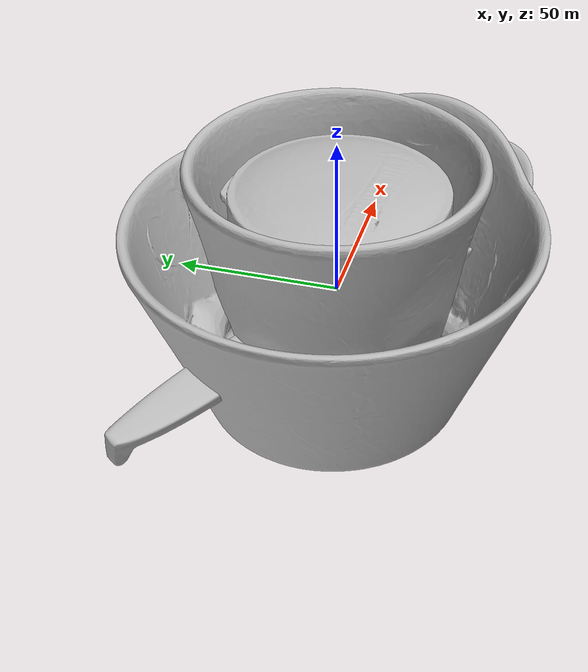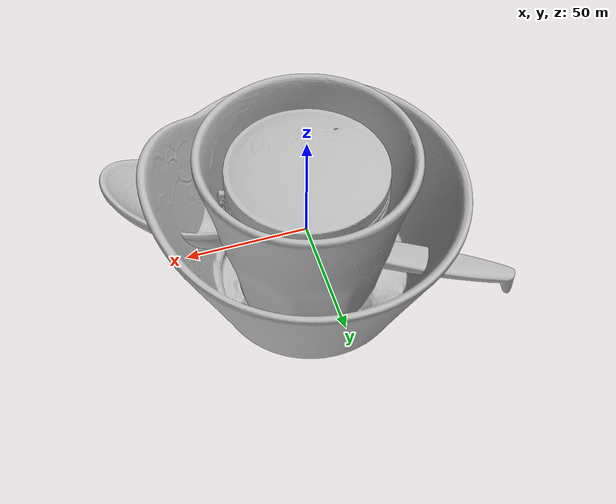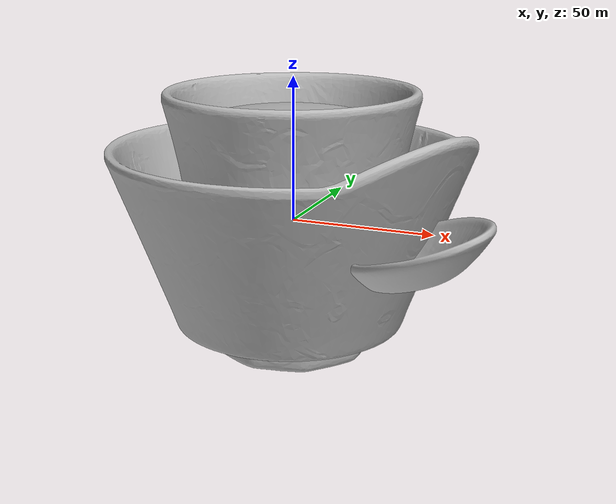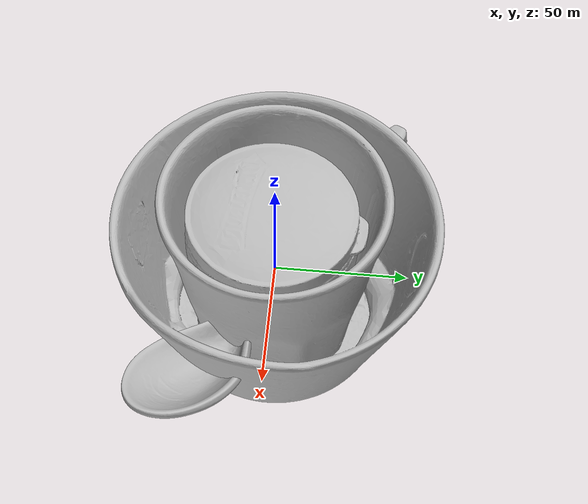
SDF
<sdf version="1.4">
 <world name="default">
  <light name="light1" type="point">
   <pose>0 0 1 0 0 0</pose>
   <diffuse>3 3 3 1</diffuse>
   <specular>3 3 3 1</specular>
  </light>
  <light name="light2" type="point">
   <pose>0 0.5 2 0 0 0</pose>
   <diffuse>1 1 1 1</diffuse>
   <specular>1 1 1 1</specular>
  </light>
  <light name="light3" type="point">
   <pose>0 0.5 2 0 0 0</pose>
   <diffuse>3 3 3 1</diffuse>
   <specular>3 3 3 1</specular>
  </light>
  <scene><ambient>0.7 0.7 0.7</ambient></scene>
  <model name="bottle1">
   <link name="link_bottle1">
    <collision name="default">
     <geometry>
      <mesh><uri>model://green_arrow/collision_meshes/collision.obj</uri><scale>1.0 1.0 1.0</scale></mesh>
     </geometry>
     <surface>
      <friction><ode><mu>0.5</mu><mu2>0.5</mu2></ode></friction>
      <contact><ode><max_vel>0</max_vel><min_depth>0.0001</min_depth><kp>1e8</kp></ode></contact>
     </surface>
    </collision>
    <visual name="default">
     <geometry>
      <mesh><uri>model://green_arrow/visual_meshes/visual.dae</uri><scale>1.0 1.0 1.0</scale></mesh>
     </geometry>
    </visual>
    <inertial>
     <mass>0.2764224410057068</mass>
     <pose>0.0005358477937988937 -0.0008270691032521427 0.002210969105362892 -0.06332196008274972 0.012988210902137025 0.674142157837799</pose>
     <inertia>
      <ixx>0.00020051825</ixx>
      <iyy>0.00020021446</iyy>
      <izz>0.00012947427</izz>
      <ixy>0</ixy>
      <ixz>0</ixz>
      <iyz>0</iyz>
     </inertia>
    </inertial>
   </link>
   <pose>-0.06785408407449722 0.041758231818675995 0.03896166384220123 0.04528460157318945 0.02425629468266785 -0.7934869744312143</pose>
  </model>
  <model name="bottle2">
   <link name="link_bottle2">
    <collision name="default">
     <geometry>
      <mesh><uri>model://pure_zhen/collision_meshes/collision.obj</uri><scale>1.0 1.0 1.0</scale></mesh>
     </geometry>
     <surface>
      <friction><ode><mu>0.5</mu><mu2>0.5</mu2></ode></friction>
      <contact><ode><max_vel>0</max_vel><min_depth>0.0001</min_depth><kp>1e8</kp></ode></contact>
     </surface>
    </collision>
    <visual name="default">
     <geometry>
      <mesh><uri>model://pure_zhen/visual_meshes/visual.dae</uri><scale>1.0 1.0 1.0</scale></mesh>
     </geometry>
    </visual>
    <inertial>
     <mass>0.2372884750366211</mass>
     <pose>-8.582299778936431e-05 0.0002452346670906991 -0.0015797418309375644 -0.027641670524606855 0.005623077019143168 0.30585846122319743</pose>
     <inertia>
      <ixx>0.0007112664</ixx>
      <iyy>0.00071145216</iyy>
      <izz>7.51383e-05</izz>
      <ixy>0</ixy>
      <ixz>0</ixz>
      <iyz>0</iyz>
     </inertia>
    </inertial>
   </link>
   <pose>0.2341763973236084 -0.07014083862304688 0.0919484868645668 0.019488867115088758 -0.01608834523321699 -0.5034679799402542</pose>
  </model>
  <model name="silverware1">
   <link name="link_silverware1">
    <collision name="default">
     <geometry>
      <mesh><uri>model://doraemon_spoon/collision_meshes/collision.obj</uri><scale>1.0 1.0 1.0</scale></mesh>
     </geometry>
     <surface>
      <friction><ode><mu>0.5</mu><mu2>0.5</mu2></ode></friction>
      <contact><ode><max_vel>0</max_vel><min_depth>0.0001</min_depth><kp>1e8</kp></ode></contact>
     </surface>
    </collision>
    <visual name="default">
     <geometry>
      <mesh><uri>model://doraemon_spoon/visual_meshes/visual.dae</uri><scale>1.0 1.0 1.0</scale></mesh>
     </geometry>
    </visual>
    <inertial>
     <mass>0.020818473771214485</mass>
     <pose>-0.022165074944496155 -0.0006374582881107926 -0.0033325462136417627 -0.009147017253597407 0.0738041759980984 -0.014123826591698564</pose>
     <inertia>
      <ixx>1.6307007e-06</ixx>
      <iyy>4.631433e-05</iyy>
      <izz>4.7101734e-05</izz>
      <ixy>0</ixy>
      <ixz>0</ixz>
      <iyz>0</iyz>
     </inertia>
    </inertial>
   </link>
   <pose>0.17279906570911407 -0.09164661169052124 0.014619855210185051 -0.1973725315617531 -0.005195046565460829 2.659992812024251</pose>
  </model>
  <model name="stationery1">
   <link name="link_stationery1">
    <collision name="default">
     <geometry>
      <mesh><uri>model://correction_fuid/collision_meshes/collision.obj</uri><scale>1.0 1.0 1.0</scale></mesh>
     </geometry>
     <surface>
      <friction><ode><mu>0.5</mu><mu2>0.5</mu2></ode></friction>
      <contact><ode><max_vel>0</max_vel><min_depth>0.0001</min_depth><kp>1e8</kp></ode></contact>
     </surface>
    </collision>
    <visual name="default">
     <geometry>
      <mesh><uri>model://correction_fuid/visual_meshes/visual.dae</uri><scale>1.0 1.0 1.0</scale></mesh>
     </geometry>
    </visual>
    <inertial>
     <mass>0.03337494283914566</mass>
     <pose>-0.00012557735317386687 -0.0009722886024974287 -0.001618212671019137 -0.010846603423614418 0.019488389217657873 -0.01599245375892703</pose>
     <inertia>
      <ixx>3.2324202e-05</ixx>
      <iyy>1.9563013e-06</iyy>
      <izz>3.3165503e-05</izz>
      <ixy>0</ixy>
      <ixz>0</ixz>
      <iyz>0</iyz>
     </inertia>
    </inertial>
   </link>
   <pose>0.11854691058397293 -0.2726261019706726 0.009632829576730728 -0.001727147211276913 -0.05616857401203927 -2.5899176047336785</pose>
  </model>
  <model name="bowl1">
   <link name="link_bowl1">
    <collision name="default">
     <geometry>
      <mesh><uri>model://hello_kitty_bowl/collision_meshes/collision.obj</uri><scale>1.0 1.0 1.0</scale></mesh>
     </geometry>
     <surface>
      <friction><ode><mu>0.5</mu><mu2>0.5</mu2></ode></friction>
      <contact><ode><max_vel>0</max_vel><min_depth>0.0001</min_depth><kp>1e8</kp></ode></contact>
     </surface>
    </collision>
    <visual name="default">
     <geometry>
      <mesh><uri>model://hello_kitty_bowl/visual_meshes/visual.dae</uri><scale>1.0 1.0 1.0</scale></mesh>
     </geometry>
    </visual>
    <inertial>
     <mass>0.11590971797704697</mass>
     <pose>-0.0015402117278426886 0.0004577837826218456 -0.0080512510612607 0.004152729053700843 -0.12227221811834889 0.04345084117661168</pose>
     <inertia>
      <ixx>0.00017210246</ixx>
      <iyy>0.00018182951</iyy>
      <izz>0.00025734986</izz>
      <ixy>0</ixy>
      <ixz>0</ixz>
      <iyz>0</iyz>
     </inertia>
    </inertial>
   </link>
   <pose>0.0204177126288414 -0.33830124139785767 0.03743338957428932 0.0013358889300124441 0.0005906130586154956 -0.48483366060444627</pose>
  </model>
  <model name="cup1">
   <link name="link_cup1">
    <collision name="default">
     <geometry>
      <mesh><uri>model://hello_kitty_cup/collision_meshes/collision.obj</uri><scale>1.0 1.0 1.0</scale></mesh>
     </geometry>
     <surface>
      <friction><ode><mu>0.5</mu><mu2>0.5</mu2></ode></friction>
      <contact><ode><max_vel>0</max_vel><min_depth>0.0001</min_depth><kp>1e8</kp></ode></contact>
     </surface>
    </collision>
    <visual name="default">
     <geometry>
      <mesh><uri>model://hello_kitty_cup/visual_meshes/visual.dae</uri><scale>1.0 1.0 1.0</scale></mesh>
     </geometry>
    </visual>
    <inertial>
     <mass>0.06483803689479828</mass>
     <pose>0.00027251249412074685 0.0002795030304696411 0.003044978016987443 0.05779149237921037 0.007964744961503711 -0.020451485374324563</pose>
     <inertia>
      <ixx>8.928983e-05</ixx>
      <iyy>9.0285175e-05</iyy>
      <izz>7.52867e-05</izz>
      <ixy>0</ixy>
      <ixz>0</ixz>
      <iyz>0</iyz>
     </inertia>
    </inertial>
   </link>
   <pose>-0.05562829226255417 0.3545832931995392 0.04621398076415062 -0.0057119118342197125 0.010786872103109442 -2.8528154356234166</pose>
  </model>
  <model name="plate1">
   <link name="link_plate1">
    <collision name="default">
     <geometry>
      <mesh><uri>model://hello_kitty_plate/collision_meshes/collision.obj</uri><scale>1.0 1.0 1.0</scale></mesh>
     </geometry>
     <surface>
      <friction><ode><mu>0.5</mu><mu2>0.5</mu2></ode></friction>
      <contact><ode><max_vel>0</max_vel><min_depth>0.0001</min_depth><kp>1e8</kp></ode></contact>
     </surface>
    </collision>
    <visual name="default">
     <geometry>
      <mesh><uri>model://hello_kitty_plate/visual_meshes/visual.dae</uri><scale>1.0 1.0 1.0</scale></mesh>
     </geometry>
    </visual>
    <inertial>
     <mass>0.035439908504486084</mass>
     <pose>0.007314295507967472 0.00028937257593497634 -0.0027947179041802883 -0.00010432032854243346 -0.007054443681780748 -0.014449040989024118</pose>
     <inertia>
      <ixx>6.833875e-05</ixx>
      <iyy>0.00012897578</iyy>
      <izz>0.00019583687</izz>
      <ixy>0</ixy>
      <ixz>0</ixz>
      <iyz>0</iyz>
     </inertia>
    </inertial>
   </link>
   <pose>0.12951809167861938 0.30130788683891296 0.008291435427963734 0.0004656674009104086 0.0041728405160662155 -0.4840945286667437</pose>
  </model>
  <model name="box4">
   <link name="link_box4">
    <collision name="default">
     <geometry>
      <mesh><uri>model://wooden_puzzle1/collision_meshes/collision.obj</uri><scale>1.0 1.0 1.0</scale></mesh>
     </geometry>
     <surface>
      <friction><ode><mu>0.5</mu><mu2>0.5</mu2></ode></friction>
      <contact><ode><max_vel>0</max_vel><min_depth>0.0001</min_depth><kp>1e8</kp></ode></contact>
     </surface>
    </collision>
    <visual name="default">
     <geometry>
      <mesh><uri>model://wooden_puzzle1/visual_meshes/visual.dae</uri><scale>1.0 1.0 1.0</scale></mesh>
     </geometry>
    </visual>
    <inertial>
     <mass>0.022725893184542656</mass>
     <pose>-0.00017350679263472557 7.972260937094688e-05 -9.191554272547364e-05 -0.07784633272711022 -0.26361483493671084 -0.5528696267966513</pose>
     <inertia>
      <ixx>4.2877546e-06</ixx>
      <iyy>4.205213e-06</iyy>
      <izz>4.2553816e-06</izz>
      <ixy>0</ixy>
      <ixz>0</ixz>
      <iyz>0</iyz>
     </inertia>
    </inertial>
   </link>
   <pose>0.17657442390918732 -0.22122129797935486 0.016802005469799042 0.010512422714953434 -0.009457349807902646 -1.576103005731415</pose>
  </model>
  <physics type="ode">
   <max_contacts>50</max_contacts>
   <ode>
    <solver><type>quick</type><iters>75</iters></solver>
    <constraints>
     <contact_max_correcting_vel>0</contact_max_correcting_vel>
     <contact_surface_layer>0</contact_surface_layer>
    </constraints>
   </ode>
  </physics>
 </world>
</sdf>
